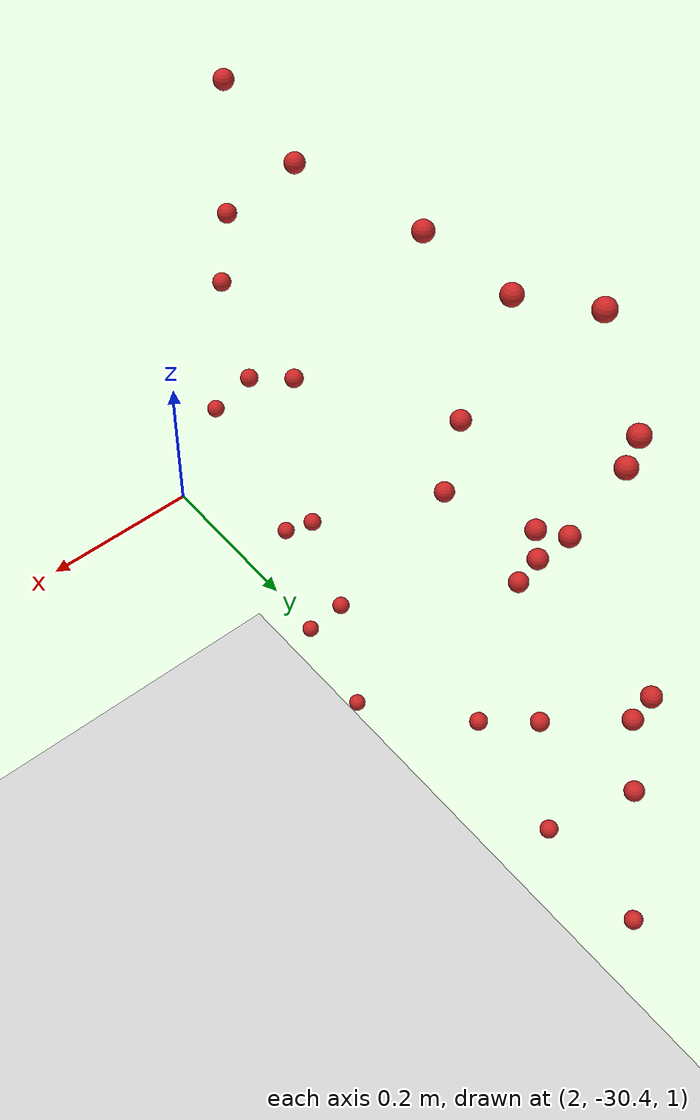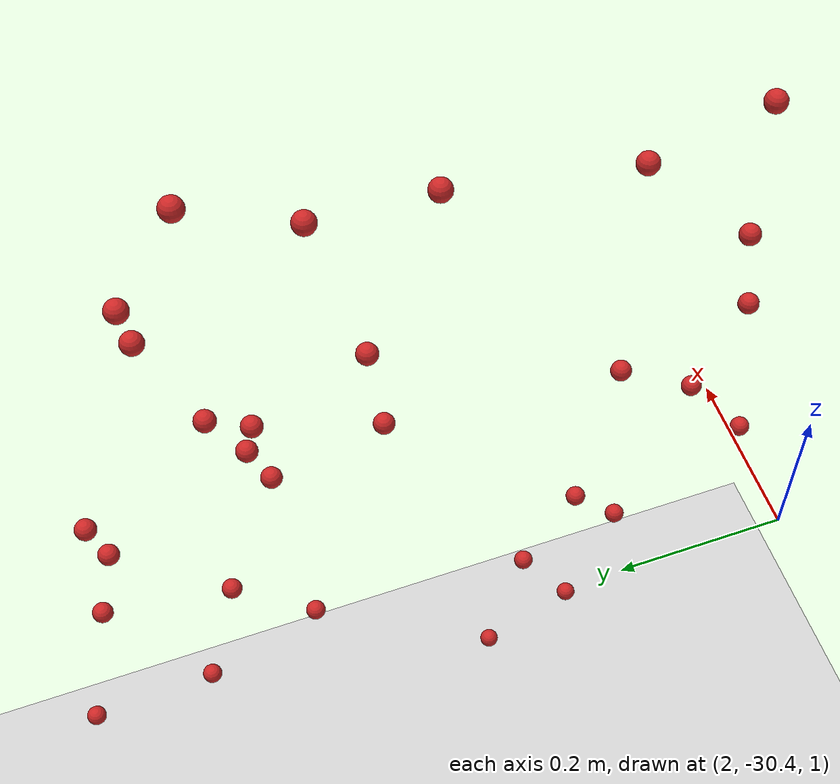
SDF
<sdf version="1.4">
 <world name="default">
  <model name="ground_plane">
   <static>1</static>
   <link name="link">
    <collision name="collision">
     <geometry><plane><normal>0 0 1</normal><size>100 100</size></plane></geometry>
     <surface><friction><ode><mu>100</mu><mu2>50</mu2></ode></friction></surface>
    </collision>
    <visual name="visual">
     <cast_shadows>0</cast_shadows>
     <geometry><plane><normal>0 0 1</normal><size>100 100</size></plane></geometry>
     <material>
      <script><uri>file://media/materials/scripts/gazebo.material</uri><name>Gazebo/Grey</name></script>
     </material>
    </visual>
    <velocity_decay><linear>0</linear><angular>0</angular></velocity_decay>
   </link>
  </model>
  <model name="apple442">
   <link name="my_apple">
    <inertial>
     <pose>2 0 0 0 -0 0</pose>
     <mass>1</mass>
     <inertia><ixx>1</ixx><ixy>0</ixy><ixz>0</ixz><iyy>1</iyy><iyz>0</iyz><izz>1</izz></inertia>
    </inertial>
    <collision name="my_apple_collision">
     <pose>2 0 1 0 -0 0</pose>
     <geometry><sphere><radius>0.01</radius></sphere></geometry>
    </collision>
    <visual name="my_apple_visual">
     <pose>2 0 1 0 -0 0</pose>
     <geometry><sphere><radius>0.01</radius></sphere></geometry>
     <material><script><name>Gazebo/Red</name><uri>__default__</uri></script></material>
    </visual>
    <gravity>0</gravity>
    <velocity_decay><linear>0</linear><angular>0</angular></velocity_decay>
   </link>
   <pose>0 -30.1597 0.41108 0 -0 0</pose>
   <static>0</static>
  </model>
  <model name="apple444">
   <link name="my_apple">
    <inertial>
     <pose>2 0 0 0 -0 0</pose>
     <mass>1</mass>
     <inertia><ixx>1</ixx><ixy>0</ixy><ixz>0</ixz><iyy>1</iyy><iyz>0</iyz><izz>1</izz></inertia>
    </inertial>
    <collision name="my_apple_collision">
     <pose>2 0 1 0 -0 0</pose>
     <geometry><sphere><radius>0.01</radius></sphere></geometry>
    </collision>
    <visual name="my_apple_visual">
     <pose>2 0 1 0 -0 0</pose>
     <geometry><sphere><radius>0.01</radius></sphere></geometry>
     <material><script><name>Gazebo/Red</name><uri>__default__</uri></script></material>
    </visual>
    <gravity>0</gravity>
    <velocity_decay><linear>0</linear><angular>0</angular></velocity_decay>
   </link>
   <pose>0 -30.1778 0.142251 0 -0 0</pose>
   <static>0</static>
  </model>
  <model name="apple445">
   <link name="my_apple">
    <inertial>
     <pose>2 0 0 0 -0 0</pose>
     <mass>1</mass>
     <inertia><ixx>1</ixx><ixy>0</ixy><ixz>0</ixz><iyy>1</iyy><iyz>0</iyz><izz>1</izz></inertia>
    </inertial>
    <collision name="my_apple_collision">
     <pose>2 0 1 0 -0 0</pose>
     <geometry><sphere><radius>0.01</radius></sphere></geometry>
    </collision>
    <visual name="my_apple_visual">
     <pose>2 0 1 0 -0 0</pose>
     <geometry><sphere><radius>0.01</radius></sphere></geometry>
     <material><script><name>Gazebo/Red</name><uri>__default__</uri></script></material>
    </visual>
    <gravity>0</gravity>
    <velocity_decay><linear>0</linear><angular>0</angular></velocity_decay>
   </link>
   <pose>0 -30.1285 0.204982 0 -0 0</pose>
   <static>0</static>
  </model>
  <model name="apple446">
   <link name="my_apple">
    <inertial>
     <pose>2 0 0 0 -0 0</pose>
     <mass>1</mass>
     <inertia><ixx>1</ixx><ixy>0</ixy><ixz>0</ixz><iyy>1</iyy><iyz>0</iyz><izz>1</izz></inertia>
    </inertial>
    <collision name="my_apple_collision">
     <pose>2 0 1 0 -0 0</pose>
     <geometry><sphere><radius>0.01</radius></sphere></geometry>
    </collision>
    <visual name="my_apple_visual">
     <pose>2 0 1 0 -0 0</pose>
     <geometry><sphere><radius>0.01</radius></sphere></geometry>
     <material><script><name>Gazebo/Red</name><uri>__default__</uri></script></material>
    </visual>
    <gravity>0</gravity>
    <velocity_decay><linear>0</linear><angular>0</angular></velocity_decay>
   </link>
   <pose>0 -30.1558 0.689369 0 -0 0</pose>
   <static>0</static>
  </model>
  <model name="apple452">
   <link name="my_apple">
    <inertial>
     <pose>2 0 0 0 -0 0</pose>
     <mass>1</mass>
     <inertia><ixx>1</ixx><ixy>0</ixy><ixz>0</ixz><iyy>1</iyy><iyz>0</iyz><izz>1</izz></inertia>
    </inertial>
    <collision name="my_apple_collision">
     <pose>2 0 1 0 -0 0</pose>
     <geometry><sphere><radius>0.01</radius></sphere></geometry>
    </collision>
    <visual name="my_apple_visual">
     <pose>2 0 1 0 -0 0</pose>
     <geometry><sphere><radius>0.01</radius></sphere></geometry>
     <material><script><name>Gazebo/Red</name><uri>__default__</uri></script></material>
    </visual>
    <gravity>0</gravity>
    <velocity_decay><linear>0</linear><angular>0</angular></velocity_decay>
   </link>
   <pose>0 -30.3088 0.243619 0 -0 0</pose>
   <static>0</static>
  </model>
  <model name="apple453">
   <link name="my_apple">
    <inertial>
     <pose>2 0 0 0 -0 0</pose>
     <mass>1</mass>
     <inertia><ixx>1</ixx><ixy>0</ixy><ixz>0</ixz><iyy>1</iyy><iyz>0</iyz><izz>1</izz></inertia>
    </inertial>
    <collision name="my_apple_collision">
     <pose>2 0 1 0 -0 0</pose>
     <geometry><sphere><radius>0.01</radius></sphere></geometry>
    </collision>
    <visual name="my_apple_visual">
     <pose>2 0 1 0 -0 0</pose>
     <geometry><sphere><radius>0.01</radius></sphere></geometry>
     <material><script><name>Gazebo/Red</name><uri>__default__</uri></script></material>
    </visual>
    <gravity>0</gravity>
    <velocity_decay><linear>0</linear><angular>0</angular></velocity_decay>
   </link>
   <pose>0 -30.1313 -0.006557 0 -0 0</pose>
   <static>0</static>
  </model>
  <model name="apple454">
   <link name="my_apple">
    <inertial>
     <pose>2 0 0 0 -0 0</pose>
     <mass>1</mass>
     <inertia><ixx>1</ixx><ixy>0</ixy><ixz>0</ixz><iyy>1</iyy><iyz>0</iyz><izz>1</izz></inertia>
    </inertial>
    <collision name="my_apple_collision">
     <pose>2 0 1 0 -0 0</pose>
     <geometry><sphere><radius>0.01</radius></sphere></geometry>
    </collision>
    <visual name="my_apple_visual">
     <pose>2 0 1 0 -0 0</pose>
     <geometry><sphere><radius>0.01</radius></sphere></geometry>
     <material><script><name>Gazebo/Red</name><uri>__default__</uri></script></material>
    </visual>
    <gravity>0</gravity>
    <velocity_decay><linear>0</linear><angular>0</angular></velocity_decay>
   </link>
   <pose>0 -30.2819 0.459215 0 -0 0</pose>
   <static>0</static>
  </model>
  <model name="apple456">
   <link name="my_apple">
    <inertial>
     <pose>2 0 0 0 -0 0</pose>
     <mass>1</mass>
     <inertia><ixx>1</ixx><ixy>0</ixy><ixz>0</ixz><iyy>1</iyy><iyz>0</iyz><izz>1</izz></inertia>
    </inertial>
    <collision name="my_apple_collision">
     <pose>2 0 1 0 -0 0</pose>
     <geometry><sphere><radius>0.01</radius></sphere></geometry>
    </collision>
    <visual name="my_apple_visual">
     <pose>2 0 1 0 -0 0</pose>
     <geometry><sphere><radius>0.01</radius></sphere></geometry>
     <material><script><name>Gazebo/Red</name><uri>__default__</uri></script></material>
    </visual>
    <gravity>0</gravity>
    <velocity_decay><linear>0</linear><angular>0</angular></velocity_decay>
   </link>
   <pose>0 -30.2658 0.561639 0 -0 0</pose>
   <static>0</static>
  </model>
  <model name="apple457">
   <link name="my_apple">
    <inertial>
     <pose>2 0 0 0 -0 0</pose>
     <mass>1</mass>
     <inertia><ixx>1</ixx><ixy>0</ixy><ixz>0</ixz><iyy>1</iyy><iyz>0</iyz><izz>1</izz></inertia>
    </inertial>
    <collision name="my_apple_collision">
     <pose>2 0 1 0 -0 0</pose>
     <geometry><sphere><radius>0.01</radius></sphere></geometry>
    </collision>
    <visual name="my_apple_visual">
     <pose>2 0 1 0 -0 0</pose>
     <geometry><sphere><radius>0.01</radius></sphere></geometry>
     <material><script><name>Gazebo/Red</name><uri>__default__</uri></script></material>
    </visual>
    <gravity>0</gravity>
    <velocity_decay><linear>0</linear><angular>0</angular></velocity_decay>
   </link>
   <pose>0 -29.8776 0.726714 0 -0 0</pose>
   <static>0</static>
  </model>
  <model name="apple458">
   <link name="my_apple">
    <inertial>
     <pose>2 0 0 0 -0 0</pose>
     <mass>1</mass>
     <inertia><ixx>1</ixx><ixy>0</ixy><ixz>0</ixz><iyy>1</iyy><iyz>0</iyz><izz>1</izz></inertia>
    </inertial>
    <collision name="my_apple_collision">
     <pose>2 0 1 0 -0 0</pose>
     <geometry><sphere><radius>0.01</radius></sphere></geometry>
    </collision>
    <visual name="my_apple_visual">
     <pose>2 0 1 0 -0 0</pose>
     <geometry><sphere><radius>0.01</radius></sphere></geometry>
     <material><script><name>Gazebo/Red</name><uri>__default__</uri></script></material>
    </visual>
    <gravity>0</gravity>
    <velocity_decay><linear>0</linear><angular>0</angular></velocity_decay>
   </link>
   <pose>0 -29.8126 0.492621 0 -0 0</pose>
   <static>0</static>
  </model>
  <model name="apple459">
   <link name="my_apple">
    <inertial>
     <pose>2 0 0 0 -0 0</pose>
     <mass>1</mass>
     <inertia><ixx>1</ixx><ixy>0</ixy><ixz>0</ixz><iyy>1</iyy><iyz>0</iyz><izz>1</izz></inertia>
    </inertial>
    <collision name="my_apple_collision">
     <pose>2 0 1 0 -0 0</pose>
     <geometry><sphere><radius>0.01</radius></sphere></geometry>
    </collision>
    <visual name="my_apple_visual">
     <pose>2 0 1 0 -0 0</pose>
     <geometry><sphere><radius>0.01</radius></sphere></geometry>
     <material><script><name>Gazebo/Red</name><uri>__default__</uri></script></material>
    </visual>
    <gravity>0</gravity>
    <velocity_decay><linear>0</linear><angular>0</angular></velocity_decay>
   </link>
   <pose>0 -29.8045 0.45842 0 -0 0</pose>
   <static>0</static>
  </model>
  <model name="apple460">
   <link name="my_apple">
    <inertial>
     <pose>2 0 0 0 -0 0</pose>
     <mass>1</mass>
     <inertia><ixx>1</ixx><ixy>0</ixy><ixz>0</ixz><iyy>1</iyy><iyz>0</iyz><izz>1</izz></inertia>
    </inertial>
    <collision name="my_apple_collision">
     <pose>2 0 1 0 -0 0</pose>
     <geometry><sphere><radius>0.01</radius></sphere></geometry>
    </collision>
    <visual name="my_apple_visual">
     <pose>2 0 1 0 -0 0</pose>
     <geometry><sphere><radius>0.01</radius></sphere></geometry>
     <material><script><name>Gazebo/Red</name><uri>__default__</uri></script></material>
    </visual>
    <gravity>0</gravity>
    <velocity_decay><linear>0</linear><angular>0</angular></velocity_decay>
   </link>
   <pose>0 -29.7751 0.519494 0 -0 0</pose>
   <static>0</static>
  </model>
  <model name="apple461">
   <link name="my_apple">
    <inertial>
     <pose>2 0 0 0 -0 0</pose>
     <mass>1</mass>
     <inertia><ixx>1</ixx><ixy>0</ixy><ixz>0</ixz><iyy>1</iyy><iyz>0</iyz><izz>1</izz></inertia>
    </inertial>
    <collision name="my_apple_collision">
     <pose>2 0 1 0 -0 0</pose>
     <geometry><sphere><radius>0.01</radius></sphere></geometry>
    </collision>
    <visual name="my_apple_visual">
     <pose>2 0 1 0 -0 0</pose>
     <geometry><sphere><radius>0.01</radius></sphere></geometry>
     <material><script><name>Gazebo/Red</name><uri>__default__</uri></script></material>
    </visual>
    <gravity>0</gravity>
    <velocity_decay><linear>0</linear><angular>0</angular></velocity_decay>
   </link>
   <pose>0 -29.8216 0.406304 0 -0 0</pose>
   <static>0</static>
  </model>
  <model name="apple462">
   <link name="my_apple">
    <inertial>
     <pose>2 0 0 0 -0 0</pose>
     <mass>1</mass>
     <inertia><ixx>1</ixx><ixy>0</ixy><ixz>0</ixz><iyy>1</iyy><iyz>0</iyz><izz>1</izz></inertia>
    </inertial>
    <collision name="my_apple_collision">
     <pose>2 0 1 0 -0 0</pose>
     <geometry><sphere><radius>0.01</radius></sphere></geometry>
    </collision>
    <visual name="my_apple_visual">
     <pose>2 0 1 0 -0 0</pose>
     <geometry><sphere><radius>0.01</radius></sphere></geometry>
     <material><script><name>Gazebo/Red</name><uri>__default__</uri></script></material>
    </visual>
    <gravity>0</gravity>
    <velocity_decay><linear>0</linear><angular>0</angular></velocity_decay>
   </link>
   <pose>0 -29.7645 0.232661 0 -0 0</pose>
   <static>0</static>
  </model>
  <model name="apple463">
   <link name="my_apple">
    <inertial>
     <pose>2 0 0 0 -0 0</pose>
     <mass>1</mass>
     <inertia><ixx>1</ixx><ixy>0</ixy><ixz>0</ixz><iyy>1</iyy><iyz>0</iyz><izz>1</izz></inertia>
    </inertial>
    <collision name="my_apple_collision">
     <pose>2 0 1 0 -0 0</pose>
     <geometry><sphere><radius>0.01</radius></sphere></geometry>
    </collision>
    <visual name="my_apple_visual">
     <pose>2 0 1 0 -0 0</pose>
     <geometry><sphere><radius>0.01</radius></sphere></geometry>
     <material><script><name>Gazebo/Red</name><uri>__default__</uri></script></material>
    </visual>
    <gravity>0</gravity>
    <velocity_decay><linear>0</linear><angular>0</angular></velocity_decay>
   </link>
   <pose>0 -29.7301 0.686066 0 -0 0</pose>
   <static>0</static>
  </model>
  <model name="apple464">
   <link name="my_apple">
    <inertial>
     <pose>2 0 0 0 -0 0</pose>
     <mass>1</mass>
     <inertia><ixx>1</ixx><ixy>0</ixy><ixz>0</ixz><iyy>1</iyy><iyz>0</iyz><izz>1</izz></inertia>
    </inertial>
    <collision name="my_apple_collision">
     <pose>2 0 1 0 -0 0</pose>
     <geometry><sphere><radius>0.01</radius></sphere></geometry>
    </collision>
    <visual name="my_apple_visual">
     <pose>2 0 1 0 -0 0</pose>
     <geometry><sphere><radius>0.01</radius></sphere></geometry>
     <material><script><name>Gazebo/Red</name><uri>__default__</uri></script></material>
    </visual>
    <gravity>0</gravity>
    <velocity_decay><linear>0</linear><angular>0</angular></velocity_decay>
   </link>
   <pose>0 -29.7348 0.644668 0 -0 0</pose>
   <static>0</static>
  </model>
  <model name="apple465">
   <link name="my_apple">
    <inertial>
     <pose>2 0 0 0 -0 0</pose>
     <mass>1</mass>
     <inertia><ixx>1</ixx><ixy>0</ixy><ixz>0</ixz><iyy>1</iyy><iyz>0</iyz><izz>1</izz></inertia>
    </inertial>
    <collision name="my_apple_collision">
     <pose>2 0 1 0 -0 0</pose>
     <geometry><sphere><radius>0.01</radius></sphere></geometry>
    </collision>
    <visual name="my_apple_visual">
     <pose>2 0 1 0 -0 0</pose>
     <geometry><sphere><radius>0.01</radius></sphere></geometry>
     <material><script><name>Gazebo/Red</name><uri>__default__</uri></script></material>
    </visual>
    <gravity>0</gravity>
    <velocity_decay><linear>0</linear><angular>0</angular></velocity_decay>
   </link>
   <pose>0 -29.9836 0.722688 0 -0 0</pose>
   <static>0</static>
  </model>
  <model name="apple467">
   <link name="my_apple">
    <inertial>
     <pose>2 0 0 0 -0 0</pose>
     <mass>1</mass>
     <inertia><ixx>1</ixx><ixy>0</ixy><ixz>0</ixz><iyy>1</iyy><iyz>0</iyz><izz>1</izz></inertia>
    </inertial>
    <collision name="my_apple_collision">
     <pose>2 0 1 0 -0 0</pose>
     <geometry><sphere><radius>0.01</radius></sphere></geometry>
    </collision>
    <visual name="my_apple_visual">
     <pose>2 0 1 0 -0 0</pose>
     <geometry><sphere><radius>0.01</radius></sphere></geometry>
     <material><script><name>Gazebo/Red</name><uri>__default__</uri></script></material>
    </visual>
    <gravity>0</gravity>
    <velocity_decay><linear>0</linear><angular>0</angular></velocity_decay>
   </link>
   <pose>0 -29.6648 0.360023 0 -0 0</pose>
   <static>0</static>
  </model>
  <model name="apple468">
   <link name="my_apple">
    <inertial>
     <pose>2 0 0 0 -0 0</pose>
     <mass>1</mass>
     <inertia><ixx>1</ixx><ixy>0</ixy><ixz>0</ixz><iyy>1</iyy><iyz>0</iyz><izz>1</izz></inertia>
    </inertial>
    <collision name="my_apple_collision">
     <pose>2 0 1 0 -0 0</pose>
     <geometry><sphere><radius>0.01</radius></sphere></geometry>
    </collision>
    <visual name="my_apple_visual">
     <pose>2 0 1 0 -0 0</pose>
     <geometry><sphere><radius>0.01</radius></sphere></geometry>
     <material><script><name>Gazebo/Red</name><uri>__default__</uri></script></material>
    </visual>
    <gravity>0</gravity>
    <velocity_decay><linear>0</linear><angular>0</angular></velocity_decay>
   </link>
   <pose>0 -29.6536 0.411205 0 -0 0</pose>
   <static>0</static>
  </model>
  <model name="apple469">
   <link name="my_apple">
    <inertial>
     <pose>2 0 0 0 -0 0</pose>
     <mass>1</mass>
     <inertia><ixx>1</ixx><ixy>0</ixy><ixz>0</ixz><iyy>1</iyy><iyz>0</iyz><izz>1</izz></inertia>
    </inertial>
    <collision name="my_apple_collision">
     <pose>2 0 1 0 -0 0</pose>
     <geometry><sphere><radius>0.01</radius></sphere></geometry>
    </collision>
    <visual name="my_apple_visual">
     <pose>2 0 1 0 -0 0</pose>
     <geometry><sphere><radius>0.01</radius></sphere></geometry>
     <material><script><name>Gazebo/Red</name><uri>__default__</uri></script></material>
    </visual>
    <gravity>0</gravity>
    <velocity_decay><linear>0</linear><angular>0</angular></velocity_decay>
   </link>
   <pose>0 -30.039 -0.062953 0 -0 0</pose>
   <static>0</static>
  </model>
  <model name="apple470">
   <link name="my_apple">
    <inertial>
     <pose>2 0 0 0 -0 0</pose>
     <mass>1</mass>
     <inertia><ixx>1</ixx><ixy>0</ixy><ixz>0</ixz><iyy>1</iyy><iyz>0</iyz><izz>1</izz></inertia>
    </inertial>
    <collision name="my_apple_collision">
     <pose>2 0 1 0 -0 0</pose>
     <geometry><sphere><radius>0.01</radius></sphere></geometry>
    </collision>
    <visual name="my_apple_visual">
     <pose>2 0 1 0 -0 0</pose>
     <geometry><sphere><radius>0.01</radius></sphere></geometry>
     <material><script><name>Gazebo/Red</name><uri>__default__</uri></script></material>
    </visual>
    <gravity>0</gravity>
    <velocity_decay><linear>0</linear><angular>0</angular></velocity_decay>
   </link>
   <pose>0 -30.2605 0.721012 0 -0 0</pose>
   <static>0</static>
  </model>
  <model name="apple471">
   <link name="my_apple">
    <inertial>
     <pose>2 0 0 0 -0 0</pose>
     <mass>1</mass>
     <inertia><ixx>1</ixx><ixy>0</ixy><ixz>0</ixz><iyy>1</iyy><iyz>0</iyz><izz>1</izz></inertia>
    </inertial>
    <collision name="my_apple_collision">
     <pose>2 0 1 0 -0 0</pose>
     <geometry><sphere><radius>0.01</radius></sphere></geometry>
    </collision>
    <visual name="my_apple_visual">
     <pose>2 0 1 0 -0 0</pose>
     <geometry><sphere><radius>0.01</radius></sphere></geometry>
     <material><script><name>Gazebo/Red</name><uri>__default__</uri></script></material>
    </visual>
    <gravity>0</gravity>
    <velocity_decay><linear>0</linear><angular>0</angular></velocity_decay>
   </link>
   <pose>0 -29.5966 0.056542 0 -0 0</pose>
   <static>0</static>
  </model>
  <model name="apple473">
   <link name="my_apple">
    <inertial>
     <pose>2 0 0 0 -0 0</pose>
     <mass>1</mass>
     <inertia><ixx>1</ixx><ixy>0</ixy><ixz>0</ixz><iyy>1</iyy><iyz>0</iyz><izz>1</izz></inertia>
    </inertial>
    <collision name="my_apple_collision">
     <pose>2 0 1 0 -0 0</pose>
     <geometry><sphere><radius>0.01</radius></sphere></geometry>
    </collision>
    <visual name="my_apple_visual">
     <pose>2 0 1 0 -0 0</pose>
     <geometry><sphere><radius>0.01</radius></sphere></geometry>
     <material><script><name>Gazebo/Red</name><uri>__default__</uri></script></material>
    </visual>
    <gravity>0</gravity>
    <velocity_decay><linear>0</linear><angular>0</angular></velocity_decay>
   </link>
   <pose>0 -29.7854 0.777125 0 -0 0</pose>
   <static>0</static>
  </model>
  <model name="apple475">
   <link name="my_apple">
    <inertial>
     <pose>2 0 0 0 -0 0</pose>
     <mass>1</mass>
     <inertia><ixx>1</ixx><ixy>0</ixy><ixz>0</ixz><iyy>1</iyy><iyz>0</iyz><izz>1</izz></inertia>
    </inertial>
    <collision name="my_apple_collision">
     <pose>2 0 1 0 -0 0</pose>
     <geometry><sphere><radius>0.01</radius></sphere></geometry>
    </collision>
    <visual name="my_apple_visual">
     <pose>2 0 1 0 -0 0</pose>
     <geometry><sphere><radius>0.01</radius></sphere></geometry>
     <material><script><name>Gazebo/Red</name><uri>__default__</uri></script></material>
    </visual>
    <gravity>0</gravity>
    <velocity_decay><linear>0</linear><angular>0</angular></velocity_decay>
   </link>
   <pose>0 -29.7236 0.068268 0 -0 0</pose>
   <static>0</static>
  </model>
  <model name="apple476">
   <link name="my_apple">
    <inertial>
     <pose>2 0 0 0 -0 0</pose>
     <mass>1</mass>
     <inertia><ixx>1</ixx><ixy>0</ixy><ixz>0</ixz><iyy>1</iyy><iyz>0</iyz><izz>1</izz></inertia>
    </inertial>
    <collision name="my_apple_collision">
     <pose>2 0 1 0 -0 0</pose>
     <geometry><sphere><radius>0.01</radius></sphere></geometry>
    </collision>
    <visual name="my_apple_visual">
     <pose>2 0 1 0 -0 0</pose>
     <geometry><sphere><radius>0.01</radius></sphere></geometry>
     <material><script><name>Gazebo/Red</name><uri>__default__</uri></script></material>
    </visual>
    <gravity>0</gravity>
    <velocity_decay><linear>0</linear><angular>0</angular></velocity_decay>
   </link>
   <pose>0 -30.2396 0.348994 0 -0 0</pose>
   <static>0</static>
  </model>
  <model name="apple477">
   <link name="my_apple">
    <inertial>
     <pose>2 0 0 0 -0 0</pose>
     <mass>1</mass>
     <inertia><ixx>1</ixx><ixy>0</ixy><ixz>0</ixz><iyy>1</iyy><iyz>0</iyz><izz>1</izz></inertia>
    </inertial>
    <collision name="my_apple_collision">
     <pose>2 0 1 0 -0 0</pose>
     <geometry><sphere><radius>0.01</radius></sphere></geometry>
    </collision>
    <visual name="my_apple_visual">
     <pose>2 0 1 0 -0 0</pose>
     <geometry><sphere><radius>0.01</radius></sphere></geometry>
     <material><script><name>Gazebo/Red</name><uri>__default__</uri></script></material>
    </visual>
    <gravity>0</gravity>
    <velocity_decay><linear>0</linear><angular>0</angular></velocity_decay>
   </link>
   <pose>0 -29.6413 0.262459 0 -0 0</pose>
   <static>0</static>
  </model>
  <model name="apple480">
   <link name="my_apple">
    <inertial>
     <pose>2 0 0 0 -0 0</pose>
     <mass>1</mass>
     <inertia><ixx>1</ixx><ixy>0</ixy><ixz>0</ixz><iyy>1</iyy><iyz>0</iyz><izz>1</izz></inertia>
    </inertial>
    <collision name="my_apple_collision">
     <pose>2 0 1 0 -0 0</pose>
     <geometry><sphere><radius>0.01</radius></sphere></geometry>
    </collision>
    <visual name="my_apple_visual">
     <pose>2 0 1 0 -0 0</pose>
     <geometry><sphere><radius>0.01</radius></sphere></geometry>
     <material><script><name>Gazebo/Red</name><uri>__default__</uri></script></material>
    </visual>
    <gravity>0</gravity>
    <velocity_decay><linear>0</linear><angular>0</angular></velocity_decay>
   </link>
   <pose>0 -30.0751 0.101716 0 -0 0</pose>
   <static>0</static>
  </model>
  <model name="apple484">
   <link name="my_apple">
    <inertial>
     <pose>2 0 0 0 -0 0</pose>
     <mass>1</mass>
     <inertia><ixx>1</ixx><ixy>0</ixy><ixz>0</ixz><iyy>1</iyy><iyz>0</iyz><izz>1</izz></inertia>
    </inertial>
    <collision name="my_apple_collision">
     <pose>2 0 1 0 -0 0</pose>
     <geometry><sphere><radius>0.01</radius></sphere></geometry>
    </collision>
    <visual name="my_apple_visual">
     <pose>2 0 1 0 -0 0</pose>
     <geometry><sphere><radius>0.01</radius></sphere></geometry>
     <material><script><name>Gazebo/Red</name><uri>__default__</uri></script></material>
    </visual>
    <gravity>0</gravity>
    <velocity_decay><linear>0</linear><angular>0</angular></velocity_decay>
   </link>
   <pose>0 -29.9179 0.54762 0 -0 0</pose>
   <static>0</static>
  </model>
  <model name="apple485">
   <link name="my_apple">
    <inertial>
     <pose>2 0 0 0 -0 0</pose>
     <mass>1</mass>
     <inertia><ixx>1</ixx><ixy>0</ixy><ixz>0</ixz><iyy>1</iyy><iyz>0</iyz><izz>1</izz></inertia>
    </inertial>
    <collision name="my_apple_collision">
     <pose>2 0 1 0 -0 0</pose>
     <geometry><sphere><radius>0.01</radius></sphere></geometry>
    </collision>
    <visual name="my_apple_visual">
     <pose>2 0 1 0 -0 0</pose>
     <geometry><sphere><radius>0.01</radius></sphere></geometry>
     <material><script><name>Gazebo/Red</name><uri>__default__</uri></script></material>
    </visual>
    <gravity>0</gravity>
    <velocity_decay><linear>0</linear><angular>0</angular></velocity_decay>
   </link>
   <pose>0 -29.843 0.136265 0 -0 0</pose>
   <static>0</static>
  </model>
  <model name="apple494">
   <link name="my_apple">
    <inertial>
     <pose>2 0 0 0 -0 0</pose>
     <mass>1</mass>
     <inertia><ixx>1</ixx><ixy>0</ixy><ixz>0</ixz><iyy>1</iyy><iyz>0</iyz><izz>1</izz></inertia>
    </inertial>
    <collision name="my_apple_collision">
     <pose>2 0 1 0 -0 0</pose>
     <geometry><sphere><radius>0.01</radius></sphere></geometry>
    </collision>
    <visual name="my_apple_visual">
     <pose>2 0 1 0 -0 0</pose>
     <geometry><sphere><radius>0.01</radius></sphere></geometry>
     <material><script><name>Gazebo/Red</name><uri>__default__</uri></script></material>
    </visual>
    <gravity>0</gravity>
    <velocity_decay><linear>0</linear><angular>0</angular></velocity_decay>
   </link>
   <pose>0 -29.9287 0.43911 0 -0 0</pose>
   <static>0</static>
  </model>
 </world>
</sdf>
